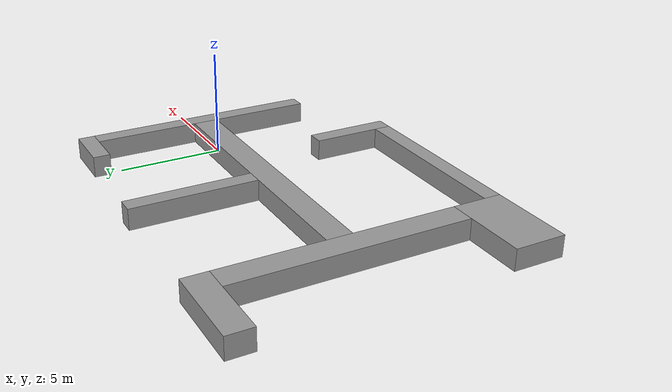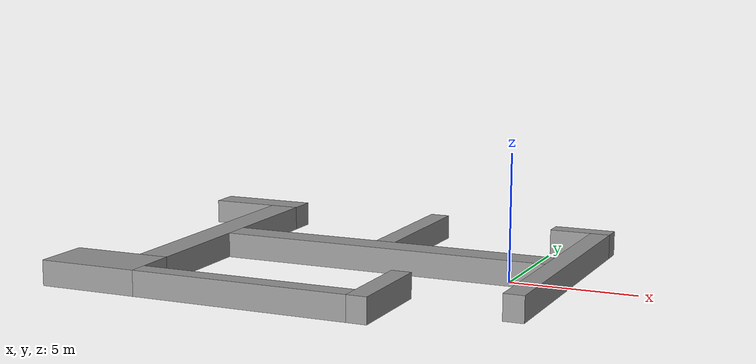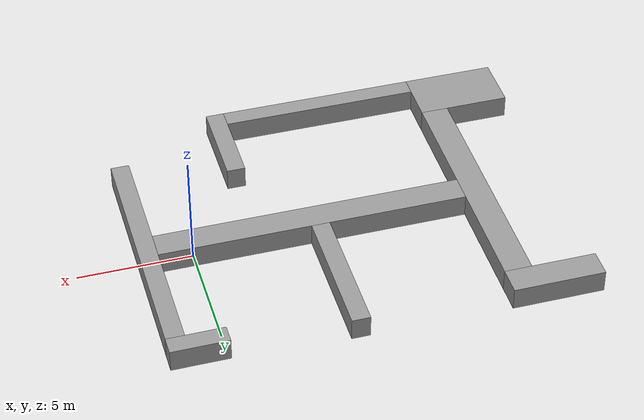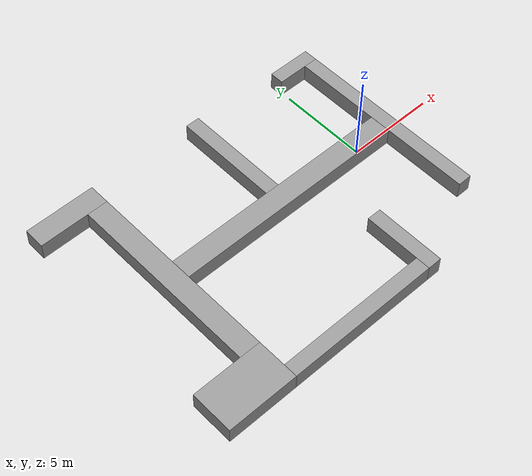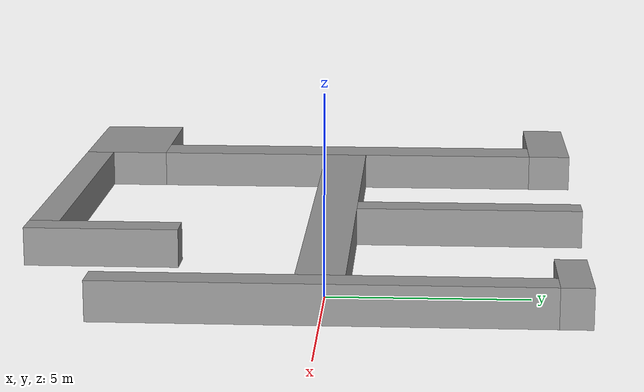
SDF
<?xml version='1.0'?>
<sdf version='1.6'>
  <model name='path'>
    <link name='Wall_18'>
      <pose frame=''>-12.5035 0.003409 0 0 -0 1.5708</pose>
      <inertial>
        <mass>1</mass>
        <pose frame=''>0 0 0 0 -0 0</pose>
        <inertia>
          <ixx>1</ixx>
          <ixy>0</ixy>
          <ixz>0</ixz>
          <iyy>1</iyy>
          <iyz>0</iyz>
          <izz>1</izz>
        </inertia>
      </inertial>
      <self_collide>0</self_collide>
      <kinematic>0</kinematic>
      <visual name='Wall_18_Visual'>
        <pose frame=''>0 0 0.5 0 -0 0</pose>
        <geometry>
          <box>
            <size>11 1.2 1</size>
          </box>
        </geometry>
        <material>
          <script>
            <uri>file://media/materials/scripts/gazebo.material</uri>
            <name>Gazebo/Grey</name>
          </script>
          <ambient>1 1 1 1</ambient>
          <shader type='pixel'>
            <normal_map>__default__</normal_map>
          </shader>
          <diffuse>0.7 0.7 0.7 1</diffuse>
          <specular>0.01 0.01 0.01 1</specular>
          <emissive>0 0 0 1</emissive>
        </material>
        <meta>
          <layer>0</layer>
        </meta>
        <transparency>0</transparency>
        <cast_shadows>1</cast_shadows>
      </visual>
      <collision name='Wall_18_Collision'>
        <laser_retro>0</laser_retro>
        <max_contacts>10</max_contacts>
        <pose frame=''>0 0 0.5 0 -0 0</pose>
        <geometry>
          <box>
            <size>11 1.2 1</size>
          </box>
        </geometry>
        <surface>
          <friction>
            <ode>
              <mu>1</mu>
              <mu2>1</mu2>
              <fdir1>0 0 0</fdir1>
              <slip1>0</slip1>
              <slip2>0</slip2>
            </ode>
            <torsional>
              <coefficient>1</coefficient>
              <patch_radius>0</patch_radius>
              <surface_radius>0</surface_radius>
              <use_patch_radius>1</use_patch_radius>
              <ode>
                <slip>0</slip>
              </ode>
            </torsional>
          </friction>
          <bounce>
            <restitution_coefficient>0</restitution_coefficient>
            <threshold>1e+06</threshold>
          </bounce>
          <contact>
            <collide_without_contact>0</collide_without_contact>
            <collide_without_contact_bitmask>1</collide_without_contact_bitmask>
            <collide_bitmask>1</collide_bitmask>
            <ode>
              <soft_cfm>0</soft_cfm>
              <soft_erp>0.2</soft_erp>
              <kp>1e+13</kp>
              <kd>1</kd>
              <max_vel>0.01</max_vel>
              <min_depth>0</min_depth>
            </ode>
            <bullet>
              <split_impulse>1</split_impulse>
              <split_impulse_penetration_threshold>-0.01</split_impulse_penetration_threshold>
              <soft_cfm>0</soft_cfm>
              <soft_erp>0.2</soft_erp>
              <kp>1e+13</kp>
              <kd>1</kd>
            </bullet>
          </contact>
        </surface>
      </collision>
    </link>
    <link name='Wall_20'>
      <pose frame=''>-5.15319 -0.016904 0 0 0 -0.000489</pose>
      <inertial>
        <mass>1</mass>
        <pose frame=''>0 0 0 0 -0 0</pose>
        <inertia>
          <ixx>1</ixx>
          <ixy>0</ixy>
          <ixz>0</ixz>
          <iyy>1</iyy>
          <iyz>0</iyz>
          <izz>1</izz>
        </inertia>
      </inertial>
      <self_collide>0</self_collide>
      <kinematic>0</kinematic>
      <visual name='Wall_20_Visual'>
        <pose frame=''>0 0 0.5 0 -0 0</pose>
        <geometry>
          <box>
            <size>13.5 1.2 1</size>
          </box>
        </geometry>
        <material>
          <script>
            <uri>file://media/materials/scripts/gazebo.material</uri>
            <name>Gazebo/Grey</name>
          </script>
          <ambient>1 1 1 1</ambient>
          <shader type='pixel'>
            <normal_map>__default__</normal_map>
          </shader>
          <diffuse>0.7 0.7 0.7 1</diffuse>
          <specular>0.01 0.01 0.01 1</specular>
          <emissive>0 0 0 1</emissive>
        </material>
        <meta>
          <layer>0</layer>
        </meta>
        <transparency>0</transparency>
        <cast_shadows>1</cast_shadows>
      </visual>
      <collision name='Wall_20_Collision'>
        <laser_retro>0</laser_retro>
        <max_contacts>10</max_contacts>
        <pose frame=''>0 0 0.5 0 -0 0</pose>
        <geometry>
          <box>
            <size>13.5 1.2 1</size>
          </box>
        </geometry>
        <surface>
          <friction>
            <ode>
              <mu>1</mu>
              <mu2>1</mu2>
              <fdir1>0 0 0</fdir1>
              <slip1>0</slip1>
              <slip2>0</slip2>
            </ode>
            <torsional>
              <coefficient>1</coefficient>
              <patch_radius>0</patch_radius>
              <surface_radius>0</surface_radius>
              <use_patch_radius>1</use_patch_radius>
              <ode>
                <slip>0</slip>
              </ode>
            </torsional>
          </friction>
          <bounce>
            <restitution_coefficient>0</restitution_coefficient>
            <threshold>1e+06</threshold>
          </bounce>
          <contact>
            <collide_without_contact>0</collide_without_contact>
            <collide_without_contact_bitmask>1</collide_without_contact_bitmask>
            <collide_bitmask>1</collide_bitmask>
            <ode>
              <soft_cfm>0</soft_cfm>
              <soft_erp>0.2</soft_erp>
              <kp>1e+13</kp>
              <kd>1</kd>
              <max_vel>0.01</max_vel>
              <min_depth>0</min_depth>
            </ode>
            <bullet>
              <split_impulse>1</split_impulse>
              <split_impulse_penetration_threshold>-0.01</split_impulse_penetration_threshold>
              <soft_cfm>0</soft_cfm>
              <soft_erp>0.2</soft_erp>
              <kp>1e+13</kp>
              <kd>1</kd>
            </bullet>
          </contact>
        </surface>
      </collision>
    </link>
    <link name='Wall_21'>
      <pose frame=''>1.99706 0.024718 0 0 -0 1.57072</pose>
      <inertial>
        <mass>1</mass>
        <pose frame=''>0 0 0 0 -0 0</pose>
        <inertia>
          <ixx>1</ixx>
          <ixy>0</ixy>
          <ixz>0</ixz>
          <iyy>1</iyy>
          <iyz>0</iyz>
          <izz>1</izz>
        </inertia>
      </inertial>
      <self_collide>0</self_collide>
      <kinematic>0</kinematic>
      <visual name='Wall_21_Visual'>
        <pose frame=''>0 0 0.5 0 -0 0</pose>
        <geometry>
          <box>
            <size>11 0.8 1</size>
          </box>
        </geometry>
        <material>
          <script>
            <uri>file://media/materials/scripts/gazebo.material</uri>
            <name>Gazebo/Grey</name>
          </script>
          <ambient>1 1 1 1</ambient>
          <shader type='pixel'>
            <normal_map>__default__</normal_map>
          </shader>
          <diffuse>0.7 0.7 0.7 1</diffuse>
          <specular>0.01 0.01 0.01 1</specular>
          <emissive>0 0 0 1</emissive>
        </material>
        <meta>
          <layer>0</layer>
        </meta>
        <transparency>0</transparency>
        <cast_shadows>1</cast_shadows>
      </visual>
      <collision name='Wall_21_Collision'>
        <laser_retro>0</laser_retro>
        <max_contacts>10</max_contacts>
        <pose frame=''>0 0 0.5 0 -0 0</pose>
        <geometry>
          <box>
            <size>11 0.8 1</size>
          </box>
        </geometry>
        <surface>
          <friction>
            <ode>
              <mu>1</mu>
              <mu2>1</mu2>
              <fdir1>0 0 0</fdir1>
              <slip1>0</slip1>
              <slip2>0</slip2>
            </ode>
            <torsional>
              <coefficient>1</coefficient>
              <patch_radius>0</patch_radius>
              <surface_radius>0</surface_radius>
              <use_patch_radius>1</use_patch_radius>
              <ode>
                <slip>0</slip>
              </ode>
            </torsional>
          </friction>
          <bounce>
            <restitution_coefficient>0</restitution_coefficient>
            <threshold>1e+06</threshold>
          </bounce>
          <contact>
            <collide_without_contact>0</collide_without_contact>
            <collide_without_contact_bitmask>1</collide_without_contact_bitmask>
            <collide_bitmask>1</collide_bitmask>
            <ode>
              <soft_cfm>0</soft_cfm>
              <soft_erp>0.2</soft_erp>
              <kp>1e+13</kp>
              <kd>1</kd>
              <max_vel>0.01</max_vel>
              <min_depth>0</min_depth>
            </ode>
            <bullet>
              <split_impulse>1</split_impulse>
              <split_impulse_penetration_threshold>-0.01</split_impulse_penetration_threshold>
              <soft_cfm>0</soft_cfm>
              <soft_erp>0.2</soft_erp>
              <kp>1e+13</kp>
              <kd>1</kd>
            </bullet>
          </contact>
        </surface>
      </collision>
    </link>
    <link name='Wall_25'>
      <pose frame=''>-5.42538 3.58343 0 0 -0 1.5708</pose>
      <inertial>
        <mass>1</mass>
        <pose frame=''>0 0 0 0 -0 0</pose>
        <inertia>
          <ixx>1</ixx>
          <ixy>0</ixy>
          <ixz>0</ixz>
          <iyy>1</iyy>
          <iyz>0</iyz>
          <izz>1</izz>
        </inertia>
      </inertial>
      <self_collide>0</self_collide>
      <kinematic>0</kinematic>
      <visual name='Wall_25_Visual'>
        <pose frame=''>0 0 0.5 0 -0 0</pose>
        <geometry>
          <box>
            <size>6 0.8 1</size>
          </box>
        </geometry>
        <material>
          <script>
            <uri>file://media/materials/scripts/gazebo.material</uri>
            <name>Gazebo/Grey</name>
          </script>
          <ambient>1 1 1 1</ambient>
          <shader type='pixel'>
            <normal_map>__default__</normal_map>
          </shader>
          <diffuse>0.7 0.7 0.7 1</diffuse>
          <specular>0.01 0.01 0.01 1</specular>
          <emissive>0 0 0 1</emissive>
        </material>
        <meta>
          <layer>0</layer>
        </meta>
        <transparency>0</transparency>
        <cast_shadows>1</cast_shadows>
      </visual>
      <collision name='Wall_25_Collision'>
        <laser_retro>0</laser_retro>
        <max_contacts>10</max_contacts>
        <pose frame=''>0 0 0.5 0 -0 0</pose>
        <geometry>
          <box>
            <size>6 0.8 1</size>
          </box>
        </geometry>
        <surface>
          <friction>
            <ode>
              <mu>1</mu>
              <mu2>1</mu2>
              <fdir1>0 0 0</fdir1>
              <slip1>0</slip1>
              <slip2>0</slip2>
            </ode>
            <torsional>
              <coefficient>1</coefficient>
              <patch_radius>0</patch_radius>
              <surface_radius>0</surface_radius>
              <use_patch_radius>1</use_patch_radius>
              <ode>
                <slip>0</slip>
              </ode>
            </torsional>
          </friction>
          <bounce>
            <restitution_coefficient>0</restitution_coefficient>
            <threshold>1e+06</threshold>
          </bounce>
          <contact>
            <collide_without_contact>0</collide_without_contact>
            <collide_without_contact_bitmask>1</collide_without_contact_bitmask>
            <collide_bitmask>1</collide_bitmask>
            <ode>
              <soft_cfm>0</soft_cfm>
              <soft_erp>0.2</soft_erp>
              <kp>1e+13</kp>
              <kd>1</kd>
              <max_vel>0.01</max_vel>
              <min_depth>0</min_depth>
            </ode>
            <bullet>
              <split_impulse>1</split_impulse>
              <split_impulse_penetration_threshold>-0.01</split_impulse_penetration_threshold>
              <soft_cfm>0</soft_cfm>
              <soft_erp>0.2</soft_erp>
              <kp>1e+13</kp>
              <kd>1</kd>
            </bullet>
          </contact>
        </surface>
      </collision>
    </link>
    <link name='Wall_27'>
      <pose frame=''>-7.5785 -7.49658 0 0 -0 0</pose>
      <inertial>
        <mass>1</mass>
        <pose frame=''>0 0 0 0 -0 0</pose>
        <inertia>
          <ixx>1</ixx>
          <ixy>0</ixy>
          <ixz>0</ixz>
          <iyy>1</iyy>
          <iyz>0</iyz>
          <izz>1</izz>
        </inertia>
      </inertial>
      <self_collide>0</self_collide>
      <kinematic>0</kinematic>
      <visual name='Wall_27_Visual'>
        <pose frame=''>0 0 0.5 0 -0 0</pose>
        <geometry>
          <box>
            <size>8.65 0.8 1</size>
          </box>
        </geometry>
        <material>
          <script>
            <uri>file://media/materials/scripts/gazebo.material</uri>
            <name>Gazebo/Grey</name>
          </script>
          <ambient>1 1 1 1</ambient>
          <shader type='pixel'>
            <normal_map>__default__</normal_map>
          </shader>
          <diffuse>0.7 0.7 0.7 1</diffuse>
          <specular>0.01 0.01 0.01 1</specular>
          <emissive>0 0 0 1</emissive>
        </material>
        <meta>
          <layer>0</layer>
        </meta>
        <transparency>0</transparency>
        <cast_shadows>1</cast_shadows>
      </visual>
      <collision name='Wall_27_Collision'>
        <laser_retro>0</laser_retro>
        <max_contacts>10</max_contacts>
        <pose frame=''>0 0 0.5 0 -0 0</pose>
        <geometry>
          <box>
            <size>8.65 0.8 1</size>
          </box>
        </geometry>
        <surface>
          <friction>
            <ode>
              <mu>1</mu>
              <mu2>1</mu2>
              <fdir1>0 0 0</fdir1>
              <slip1>0</slip1>
              <slip2>0</slip2>
            </ode>
            <torsional>
              <coefficient>1</coefficient>
              <patch_radius>0</patch_radius>
              <surface_radius>0</surface_radius>
              <use_patch_radius>1</use_patch_radius>
              <ode>
                <slip>0</slip>
              </ode>
            </torsional>
          </friction>
          <bounce>
            <restitution_coefficient>0</restitution_coefficient>
            <threshold>1e+06</threshold>
          </bounce>
          <contact>
            <collide_without_contact>0</collide_without_contact>
            <collide_without_contact_bitmask>1</collide_without_contact_bitmask>
            <collide_bitmask>1</collide_bitmask>
            <ode>
              <soft_cfm>0</soft_cfm>
              <soft_erp>0.2</soft_erp>
              <kp>1e+13</kp>
              <kd>1</kd>
              <max_vel>0.01</max_vel>
              <min_depth>0</min_depth>
            </ode>
            <bullet>
              <split_impulse>1</split_impulse>
              <split_impulse_penetration_threshold>-0.01</split_impulse_penetration_threshold>
              <soft_cfm>0</soft_cfm>
              <soft_erp>0.2</soft_erp>
              <kp>1e+13</kp>
              <kd>1</kd>
            </bullet>
          </contact>
        </surface>
      </collision>
    </link>
    <link name='Wall_31'>
      <pose frame=''>-2.85351 -5.89658 0 0 0 -1.57079</pose>
      <inertial>
        <mass>1</mass>
        <pose frame=''>0 0 0 0 -0 0</pose>
        <inertia>
          <ixx>1</ixx>
          <ixy>0</ixy>
          <ixz>0</ixz>
          <iyy>1</iyy>
          <iyz>0</iyz>
          <izz>1</izz>
        </inertia>
      </inertial>
      <self_collide>0</self_collide>
      <kinematic>0</kinematic>
      <visual name='Wall_31_Visual'>
        <pose frame=''>0 0 0.5 0 -0 0</pose>
        <geometry>
          <box>
            <size>4 0.8 1</size>
          </box>
        </geometry>
        <material>
          <script>
            <uri>file://media/materials/scripts/gazebo.material</uri>
            <name>Gazebo/Grey</name>
          </script>
          <ambient>1 1 1 1</ambient>
          <shader type='pixel'>
            <normal_map>__default__</normal_map>
          </shader>
          <diffuse>0.7 0.7 0.7 1</diffuse>
          <specular>0.01 0.01 0.01 1</specular>
          <emissive>0 0 0 1</emissive>
        </material>
        <meta>
          <layer>0</layer>
        </meta>
        <transparency>0</transparency>
        <cast_shadows>1</cast_shadows>
      </visual>
      <collision name='Wall_31_Collision'>
        <laser_retro>0</laser_retro>
        <max_contacts>10</max_contacts>
        <pose frame=''>0 0 0.5 0 -0 0</pose>
        <geometry>
          <box>
            <size>4 0.8 1</size>
          </box>
        </geometry>
        <surface>
          <friction>
            <ode>
              <mu>1</mu>
              <mu2>1</mu2>
              <fdir1>0 0 0</fdir1>
              <slip1>0</slip1>
              <slip2>0</slip2>
            </ode>
            <torsional>
              <coefficient>1</coefficient>
              <patch_radius>0</patch_radius>
              <surface_radius>0</surface_radius>
              <use_patch_radius>1</use_patch_radius>
              <ode>
                <slip>0</slip>
              </ode>
            </torsional>
          </friction>
          <bounce>
            <restitution_coefficient>0</restitution_coefficient>
            <threshold>1e+06</threshold>
          </bounce>
          <contact>
            <collide_without_contact>0</collide_without_contact>
            <collide_without_contact_bitmask>1</collide_without_contact_bitmask>
            <collide_bitmask>1</collide_bitmask>
            <ode>
              <soft_cfm>0</soft_cfm>
              <soft_erp>0.2</soft_erp>
              <kp>1e+13</kp>
              <kd>1</kd>
              <max_vel>0.01</max_vel>
              <min_depth>0</min_depth>
            </ode>
            <bullet>
              <split_impulse>1</split_impulse>
              <split_impulse_penetration_threshold>-0.01</split_impulse_penetration_threshold>
              <soft_cfm>0</soft_cfm>
              <soft_erp>0.2</soft_erp>
              <kp>1e+13</kp>
              <kd>1</kd>
            </bullet>
          </contact>
        </surface>
      </collision>
    </link>
    <link name='Wall_35'>
      <pose frame=''>1.1473 5.91911 0 0 -0 0.000465</pose>
      <inertial>
        <mass>1</mass>
        <pose frame=''>0 0 0 0 -0 0</pose>
        <inertia>
          <ixx>1</ixx>
          <ixy>0</ixy>
          <ixz>0</ixz>
          <iyy>1</iyy>
          <iyz>0</iyz>
          <izz>1</izz>
        </inertia>
      </inertial>
      <self_collide>0</self_collide>
      <kinematic>0</kinematic>
      <visual name='Wall_35_Visual'>
        <pose frame=''>0 0 0.5 0 -0 0</pose>
        <geometry>
          <box>
            <size>2.5 0.79 1</size>
          </box>
        </geometry>
        <material>
          <script>
            <uri>file://media/materials/scripts/gazebo.material</uri>
            <name>Gazebo/Grey</name>
          </script>
          <ambient>1 1 1 1</ambient>
          <shader type='pixel'>
            <normal_map>__default__</normal_map>
          </shader>
          <diffuse>0.7 0.7 0.7 1</diffuse>
          <specular>0.01 0.01 0.01 1</specular>
          <emissive>0 0 0 1</emissive>
        </material>
        <meta>
          <layer>0</layer>
        </meta>
        <transparency>0</transparency>
        <cast_shadows>1</cast_shadows>
      </visual>
      <collision name='Wall_35_Collision'>
        <laser_retro>0</laser_retro>
        <max_contacts>10</max_contacts>
        <pose frame=''>0 0 0.5 0 -0 0</pose>
        <geometry>
          <box>
            <size>2.5 0.8 1</size>
          </box>
        </geometry>
        <surface>
          <friction>
            <ode>
              <mu>1</mu>
              <mu2>1</mu2>
              <fdir1>0 0 0</fdir1>
              <slip1>0</slip1>
              <slip2>0</slip2>
            </ode>
            <torsional>
              <coefficient>1</coefficient>
              <patch_radius>0</patch_radius>
              <surface_radius>0</surface_radius>
              <use_patch_radius>1</use_patch_radius>
              <ode>
                <slip>0</slip>
              </ode>
            </torsional>
          </friction>
          <bounce>
            <restitution_coefficient>0</restitution_coefficient>
            <threshold>1e+06</threshold>
          </bounce>
          <contact>
            <collide_without_contact>0</collide_without_contact>
            <collide_without_contact_bitmask>1</collide_without_contact_bitmask>
            <collide_bitmask>1</collide_bitmask>
            <ode>
              <soft_cfm>0</soft_cfm>
              <soft_erp>0.2</soft_erp>
              <kp>1e+13</kp>
              <kd>1</kd>
              <max_vel>0.01</max_vel>
              <min_depth>0</min_depth>
            </ode>
            <bullet>
              <split_impulse>1</split_impulse>
              <split_impulse_penetration_threshold>-0.01</split_impulse_penetration_threshold>
              <soft_cfm>0</soft_cfm>
              <soft_erp>0.2</soft_erp>
              <kp>1e+13</kp>
              <kd>1</kd>
            </bullet>
          </contact>
        </surface>
      </collision>
    </link>
    <link name='Wall_44'>
      <pose frame=''>-13.9035 6.10342 0 0 -0 3.14159</pose>
      <inertial>
        <mass>1</mass>
        <pose frame=''>0 0 0 0 -0 0</pose>
        <inertia>
          <ixx>1</ixx>
          <ixy>0</ixy>
          <ixz>0</ixz>
          <iyy>1</iyy>
          <iyz>0</iyz>
          <izz>1</izz>
        </inertia>
      </inertial>
      <self_collide>0</self_collide>
      <kinematic>0</kinematic>
      <visual name='Wall_44_Visual'>
        <pose frame=''>0 0 0.5 0 -0 0</pose>
        <geometry>
          <box>
            <size>4 1.2 1</size>
          </box>
        </geometry>
        <material>
          <script>
            <uri>file://media/materials/scripts/gazebo.material</uri>
            <name>Gazebo/Grey</name>
          </script>
          <ambient>1 1 1 1</ambient>
          <shader type='pixel'>
            <normal_map>__default__</normal_map>
          </shader>
          <diffuse>0.7 0.7 0.7 1</diffuse>
          <specular>0.01 0.01 0.01 1</specular>
          <emissive>0 0 0 1</emissive>
        </material>
        <meta>
          <layer>0</layer>
        </meta>
        <transparency>0</transparency>
        <cast_shadows>1</cast_shadows>
      </visual>
      <collision name='Wall_44_Collision'>
        <laser_retro>0</laser_retro>
        <max_contacts>10</max_contacts>
        <pose frame=''>0 0 0.5 0 -0 0</pose>
        <geometry>
          <box>
            <size>4 1.2 1</size>
          </box>
        </geometry>
        <surface>
          <friction>
            <ode>
              <mu>1</mu>
              <mu2>1</mu2>
              <fdir1>0 0 0</fdir1>
              <slip1>0</slip1>
              <slip2>0</slip2>
            </ode>
            <torsional>
              <coefficient>1</coefficient>
              <patch_radius>0</patch_radius>
              <surface_radius>0</surface_radius>
              <use_patch_radius>1</use_patch_radius>
              <ode>
                <slip>0</slip>
              </ode>
            </torsional>
          </friction>
          <bounce>
            <restitution_coefficient>0</restitution_coefficient>
            <threshold>1e+06</threshold>
          </bounce>
          <contact>
            <collide_without_contact>0</collide_without_contact>
            <collide_without_contact_bitmask>1</collide_without_contact_bitmask>
            <collide_bitmask>1</collide_bitmask>
            <ode>
              <soft_cfm>0</soft_cfm>
              <soft_erp>0.2</soft_erp>
              <kp>1e+13</kp>
              <kd>1</kd>
              <max_vel>0.01</max_vel>
              <min_depth>0</min_depth>
            </ode>
            <bullet>
              <split_impulse>1</split_impulse>
              <split_impulse_penetration_threshold>-0.01</split_impulse_penetration_threshold>
              <soft_cfm>0</soft_cfm>
              <soft_erp>0.2</soft_erp>
              <kp>1e+13</kp>
              <kd>1</kd>
            </bullet>
          </contact>
        </surface>
      </collision>
    </link>
    <link name='Wall_62'>
      <pose frame=''>-13.9035 -6.69658 0 0 -0 0</pose>
      <inertial>
        <mass>1</mass>
        <pose frame=''>0 0 0 0 -0 0</pose>
        <inertia>
          <ixx>1</ixx>
          <ixy>0</ixy>
          <ixz>0</ixz>
          <iyy>1</iyy>
          <iyz>0</iyz>
          <izz>1</izz>
        </inertia>
      </inertial>
      <self_collide>0</self_collide>
      <kinematic>0</kinematic>
      <visual name='Wall_62_Visual'>
        <pose frame=''>0 0 0.5 0 -0 0</pose>
        <geometry>
          <box>
            <size>4 2.4 1</size>
          </box>
        </geometry>
        <material>
          <script>
            <uri>file://media/materials/scripts/gazebo.material</uri>
            <name>Gazebo/Grey</name>
          </script>
          <ambient>1 1 1 1</ambient>
          <shader type='pixel'>
            <normal_map>__default__</normal_map>
          </shader>
          <diffuse>0.7 0.7 0.7 1</diffuse>
          <specular>0.01 0.01 0.01 1</specular>
          <emissive>0 0 0 1</emissive>
        </material>
        <meta>
          <layer>0</layer>
        </meta>
        <transparency>0</transparency>
        <cast_shadows>1</cast_shadows>
      </visual>
      <collision name='Wall_62_Collision'>
        <laser_retro>0</laser_retro>
        <max_contacts>10</max_contacts>
        <pose frame=''>0 0 0.5 0 -0 0</pose>
        <geometry>
          <box>
            <size>4 2.4 1</size>
          </box>
        </geometry>
        <surface>
          <friction>
            <ode>
              <mu>1</mu>
              <mu2>1</mu2>
              <fdir1>0 0 0</fdir1>
              <slip1>0</slip1>
              <slip2>0</slip2>
            </ode>
            <torsional>
              <coefficient>1</coefficient>
              <patch_radius>0</patch_radius>
              <surface_radius>0</surface_radius>
              <use_patch_radius>1</use_patch_radius>
              <ode>
                <slip>0</slip>
              </ode>
            </torsional>
          </friction>
          <bounce>
            <restitution_coefficient>0</restitution_coefficient>
            <threshold>1e+06</threshold>
          </bounce>
          <contact>
            <collide_without_contact>0</collide_without_contact>
            <collide_without_contact_bitmask>1</collide_without_contact_bitmask>
            <collide_bitmask>1</collide_bitmask>
            <ode>
              <soft_cfm>0</soft_cfm>
              <soft_erp>0.2</soft_erp>
              <kp>1e+13</kp>
              <kd>1</kd>
              <max_vel>0.01</max_vel>
              <min_depth>0</min_depth>
            </ode>
            <bullet>
              <split_impulse>1</split_impulse>
              <split_impulse_penetration_threshold>-0.01</split_impulse_penetration_threshold>
              <soft_cfm>0</soft_cfm>
              <soft_erp>0.2</soft_erp>
              <kp>1e+13</kp>
              <kd>1</kd>
            </bullet>
          </contact>
        </surface>
      </collision>
    </link>
    <static>1</static>
    <allow_auto_disable>1</allow_auto_disable>
  </model>
</sdf>
